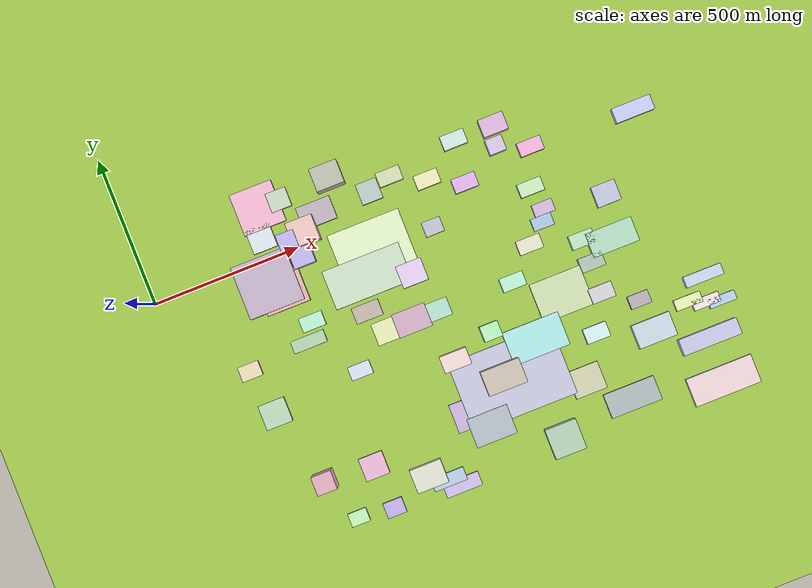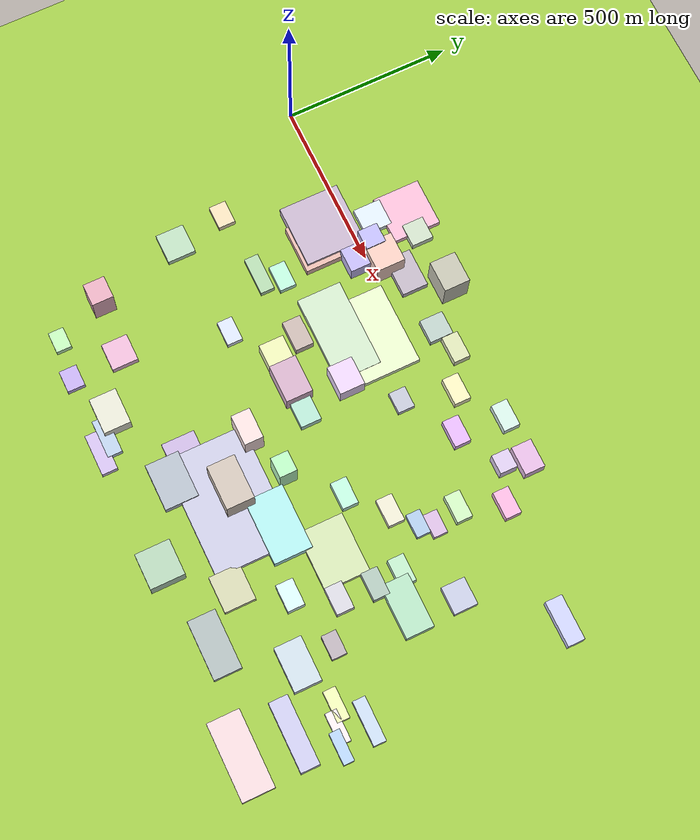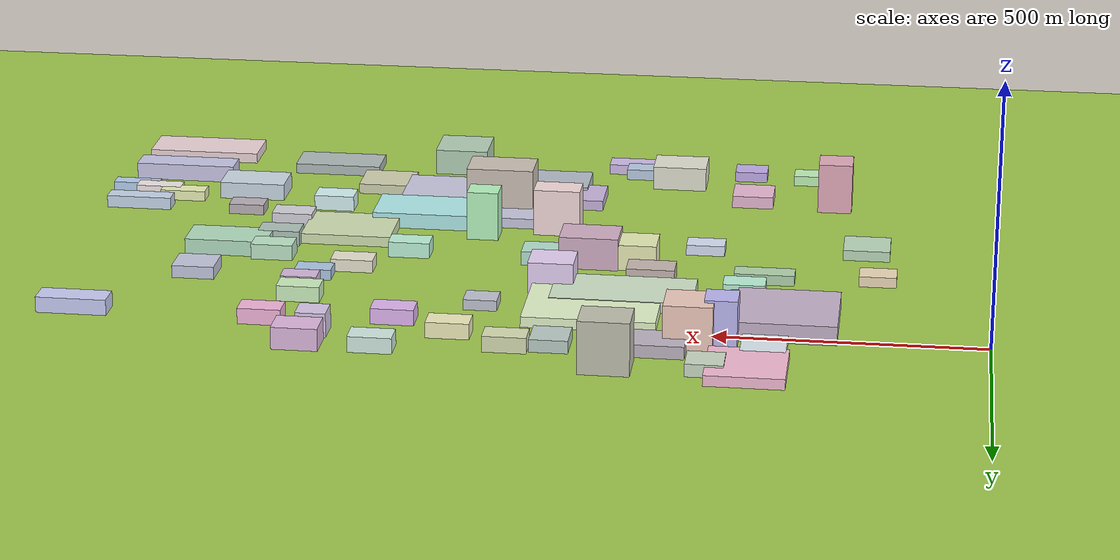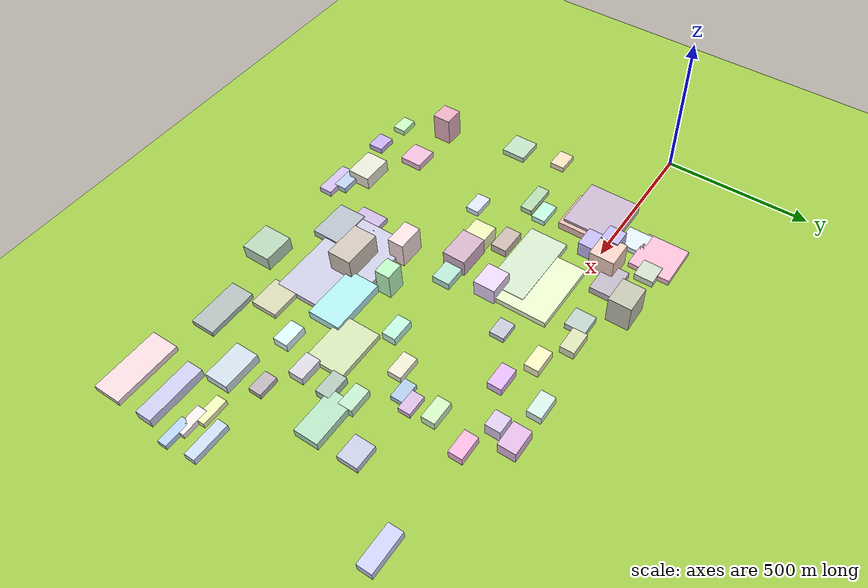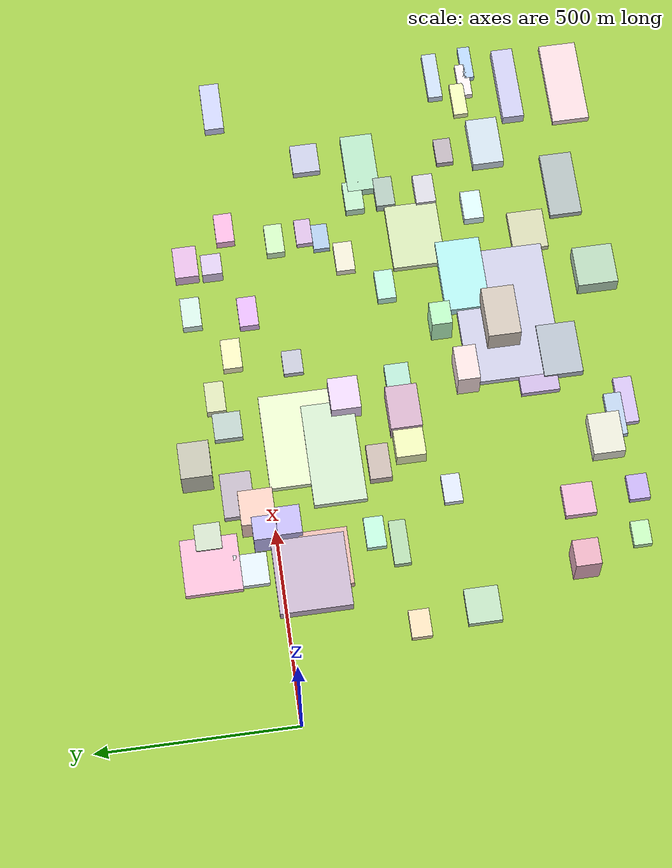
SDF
<sdf version="1.9">
 <world name="city_map">
  <model name="ground_plane">
   <static>1</static>
   <link name="link">
    <collision name="collision">
     <geometry><plane><normal>0 0 1</normal><size>11000 11000</size></plane></geometry>
    </collision>
    <visual name="visual">
     <geometry><plane><normal>0 0 1</normal><size>11000 11000</size></plane></geometry>
     <material>
      <ambient>0.551 0.712 0.210 1</ambient>
      <diffuse>0.651 0.812 0.310 1</diffuse>
      <specular>0.1 0.1 0.05 1</specular>
     </material>
    </visual>
   </link>
  </model>
  <model name="building_735441387">
   <static>1</static>
   <pose>990.6046704130122 -649.9140800671806 10.0 0 0 0</pose>
   <link name="link">
    <collision name="collision">
     <geometry><box><size>358.56232333178815 240.7256999998424 20</size></box></geometry>
    </collision>
    <visual name="visual">
     <cast_shadows>false</cast_shadows>
     <geometry><box><size>358.56232333178815 240.7256999998424 20</size></box></geometry>
     <material>
      <ambient>0.714 0.714 0.808 1</ambient>
      <diffuse>0.814 0.814 0.908 1</diffuse>
      <specular>0.244 0.244 0.272 1</specular>
      <emissive>0.01 0.01 0.01 1</emissive>
     </material>
    </visual>
   </link>
  </model>
  <model name="building_58254114">
   <static>1</static>
   <pose>724.2757790682764 -109.13401245718426 10.0 0 0 0</pose>
   <link name="link">
    <collision name="collision">
     <geometry><box><size>246.58649999971516 217.71884028026636 20</size></box></geometry>
    </collision>
    <visual name="visual">
     <cast_shadows>false</cast_shadows>
     <geometry><box><size>246.58649999971516 217.71884028026636 20</size></box></geometry>
     <material>
      <ambient>0.825 0.893 0.718 1</ambient>
      <diffuse>0.925 0.993 0.818 1</diffuse>
      <specular>0.278 0.298 0.246 1</specular>
      <emissive>0.01 0.01 0.01 1</emissive>
     </material>
    </visual>
   </link>
  </model>
  <model name="building_768414518">
   <static>1</static>
   <pose>675.4798985630688 -168.62658906927803 10.604470796964094 0 0 0</pose>
   <link name="link">
    <collision name="collision">
     <geometry><box><size>265.37880000006453 132.25785919488504 21.208941593928188</size></box></geometry>
    </collision>
    <visual name="visual">
     <cast_shadows>false</cast_shadows>
     <geometry><box><size>265.37880000006453 132.25785919488504 21.208941593928188</size></box></geometry>
     <material>
      <ambient>0.741 0.824 0.715 1</ambient>
      <diffuse>0.841 0.924 0.815 1</diffuse>
      <specular>0.252 0.277 0.245 1</specular>
      <emissive>0.01 0.01 0.01 1</emissive>
     </material>
    </visual>
   </link>
  </model>
  <model name="building_783578311">
   <static>1</static>
   <pose>367.2659103462045 -73.0825729207034 18.0 0 0 0</pose>
   <link name="link">
    <collision name="collision">
     <geometry><box><size>188.20127816013837 179.67570000018185 36.0</size></box></geometry>
    </collision>
    <visual name="visual">
     <cast_shadows>false</cast_shadows>
     <geometry><box><size>188.20127816013837 179.67570000018185 36.0</size></box></geometry>
     <material>
      <ambient>0.697 0.629 0.719 1</ambient>
      <diffuse>0.797 0.729 0.819 1</diffuse>
      <specular>0.239 0.219 0.246 1</specular>
      <emissive>0.01 0.01 0.01 1</emissive>
     </material>
    </visual>
   </link>
  </model>
  <model name="building_491562029">
   <static>1</static>
   <pose>1239.5995822557716 -455.4280711732934 10.0 0 0 0</pose>
   <link name="link">
    <collision name="collision">
     <geometry><box><size>175.53679087195601 133.9437000004935 20</size></box></geometry>
    </collision>
    <visual name="visual">
     <cast_shadows>false</cast_shadows>
     <geometry><box><size>175.53679087195601 133.9437000004935 20</size></box></geometry>
     <material>
      <ambient>0.748 0.810 0.625 1</ambient>
      <diffuse>0.848 0.910 0.725 1</diffuse>
      <specular>0.254 0.273 0.217 1</specular>
      <emissive>0.01 0.01 0.01 1</emissive>
     </material>
    </visual>
   </link>
  </model>
  <model name="building_186137424">
   <static>1</static>
   <pose>1108.603930111163 -557.994513239113 15.0 0 0 0</pose>
   <link name="link">
    <collision name="collision">
     <geometry><box><size>193.07671922219998 113.29769999977657 30.0</size></box></geometry>
    </collision>
    <visual name="visual">
     <cast_shadows>false</cast_shadows>
     <geometry><box><size>193.07671922219998 113.29769999977657 30.0</size></box></geometry>
     <material>
      <ambient>0.615 0.850 0.848 1</ambient>
      <diffuse>0.715 0.950 0.948 1</diffuse>
      <specular>0.215 0.285 0.285 1</specular>
      <emissive>0.01 0.01 0.01 1</emissive>
     </material>
    </visual>
   </link>
  </model>
  <model name="building_936792399">
   <static>1</static>
   <pose>1624.5374056204116 -907.7582186121348 10.0 0 0 0</pose>
   <link name="link">
    <collision name="collision">
     <geometry><box><size>225.4965841618569 95.29349999996128 20</size></box></geometry>
    </collision>
    <visual name="visual">
     <cast_shadows>false</cast_shadows>
     <geometry><box><size>225.4965841618569 95.29349999996128 20</size></box></geometry>
     <material>
      <ambient>0.867 0.768 0.782 1</ambient>
      <diffuse>0.967 0.868 0.882 1</diffuse>
      <specular>0.290 0.260 0.265 1</specular>
      <emissive>0.01 0.01 0.01 1</emissive>
     </material>
    </visual>
   </link>
  </model>
  <model name="building_369859708">
   <static>1</static>
   <pose>425.964973907894 166.7840503494214 10.0 0 0 0</pose>
   <link name="link">
    <collision name="collision">
     <geometry><box><size>143.72280000041115 141.65052970631882 20</size></box></geometry>
    </collision>
    <visual name="visual">
     <cast_shadows>false</cast_shadows>
     <geometry><box><size>143.72280000041115 141.65052970631882 20</size></box></geometry>
     <material>
      <ambient>0.891 0.661 0.758 1</ambient>
      <diffuse>0.991 0.761 0.858 1</diffuse>
      <specular>0.297 0.228 0.257 1</specular>
      <emissive>0.01 0.01 0.01 1</emissive>
     </material>
    </visual>
   </link>
  </model>
  <model name="building_381157944">
   <static>1</static>
   <pose>403.02130046156265 -113.82951725773187 13.5 0 0 0</pose>
   <link name="link">
    <collision name="collision">
     <geometry><box><size>146.7176547548775 118.1817000000649 27.0</size></box></geometry>
    </collision>
    <visual name="visual">
     <cast_shadows>false</cast_shadows>
     <geometry><box><size>146.7176547548775 118.1817000000649 27.0</size></box></geometry>
     <material>
      <ambient>0.820 0.648 0.605 1</ambient>
      <diffuse>0.920 0.748 0.705 1</diffuse>
      <specular>0.276 0.224 0.212 1</specular>
      <emissive>0.01 0.01 0.01 1</emissive>
     </material>
    </visual>
   </link>
  </model>
  <model name="building_538913769">
   <static>1</static>
   <pose>1331.424232459958 -849.419679857849 10.0 0 0 0</pose>
   <link name="link">
    <collision name="collision">
     <geometry><box><size>174.00430363194425 81.90689999968725 20</size></box></geometry>
    </collision>
    <visual name="visual">
     <cast_shadows>false</cast_shadows>
     <geometry><box><size>174.00430363194425 81.90689999968725 20</size></box></geometry>
     <material>
      <ambient>0.612 0.656 0.655 1</ambient>
      <diffuse>0.712 0.756 0.755 1</diffuse>
      <specular>0.214 0.227 0.227 1</specular>
      <emissive>0.01 0.01 0.01 1</emissive>
     </material>
    </visual>
   </link>
  </model>
  <model name="building_262023527">
   <static>1</static>
   <pose>872.5529877613625 -768.860771161569 12.685236863792074 0 0 0</pose>
   <link name="link">
    <collision name="collision">
     <geometry><box><size>138.83880000012283 98.6872113250767 25.370473727584148</size></box></geometry>
    </collision>
    <visual name="visual">
     <cast_shadows>false</cast_shadows>
     <geometry><box><size>138.83880000012283 98.6872113250767 25.370473727584148</size></box></geometry>
     <material>
      <ambient>0.630 0.664 0.708 1</ambient>
      <diffuse>0.730 0.764 0.808 1</diffuse>
      <specular>0.219 0.229 0.242 1</specular>
      <emissive>0.01 0.01 0.01 1</emissive>
     </material>
    </visual>
   </link>
  </model>
  <model name="building_562060062">
   <static>1</static>
   <pose>1458.532356767686 -343.0986178576486 15.0 0 0 0</pose>
   <link name="link">
    <collision name="collision">
     <geometry><box><size>158.6412000004458 82.41360156937621 30.0</size></box></geometry>
    </collision>
    <visual name="visual">
     <cast_shadows>false</cast_shadows>
     <geometry><box><size>158.6412000004458 82.41360156937621 30.0</size></box></geometry>
     <material>
      <ambient>0.627 0.805 0.684 1</ambient>
      <diffuse>0.727 0.905 0.784 1</diffuse>
      <specular>0.218 0.271 0.235 1</specular>
      <emissive>0.01 0.01 0.01 1</emissive>
     </material>
    </visual>
   </link>
  </model>
  <model name="building_133293212">
   <static>1</static>
   <pose>1634.5774587632718 -758.7641567915618 16.5 0 0 0</pose>
   <link name="link">
    <collision name="collision">
     <geometry><box><size>200.58306857929722 55.55550000012488 33.0</size></box></geometry>
    </collision>
    <visual name="visual">
     <cast_shadows>false</cast_shadows>
     <geometry><box><size>200.58306857929722 55.55550000012488 33.0</size></box></geometry>
     <material>
      <ambient>0.717 0.712 0.845 1</ambient>
      <diffuse>0.817 0.812 0.945 1</diffuse>
      <specular>0.245 0.244 0.284 1</specular>
      <emissive>0.01 0.01 0.01 1</emissive>
     </material>
    </visual>
   </link>
  </model>
  <model name="building_648446637">
   <static>1</static>
   <pose>964.6554053573074 -631.3977401350257 49.181187085263616 0 0 0</pose>
   <link name="link">
    <collision name="collision">
     <geometry><box><size>131.5956034640008 82.35090000014367 98.36237417052723</size></box></geometry>
    </collision>
    <visual name="visual">
     <cast_shadows>false</cast_shadows>
     <geometry><box><size>131.5956034640008 82.35090000014367 98.36237417052723</size></box></geometry>
     <material>
      <ambient>0.730 0.684 0.637 1</ambient>
      <diffuse>0.830 0.784 0.737 1</diffuse>
      <specular>0.249 0.235 0.221 1</specular>
      <emissive>0.01 0.01 0.01 1</emissive>
     </material>
    </visual>
   </link>
  </model>
  <model name="building_60316462">
   <static>1</static>
   <pose>1077.996618640191 -893.0307165947186 25.449811772435737 0 0 0</pose>
   <link name="link">
    <collision name="collision">
     <geometry><box><size>106.13820000050112 101.67591008909793 50.899623544871474</size></box></geometry>
    </collision>
    <visual name="visual">
     <cast_shadows>false</cast_shadows>
     <geometry><box><size>106.13820000050112 101.67591008909793 50.899623544871474</size></box></geometry>
     <material>
      <ambient>0.630 0.748 0.642 1</ambient>
      <diffuse>0.730 0.848 0.742 1</diffuse>
      <specular>0.219 0.254 0.223 1</specular>
      <emissive>0.01 0.01 0.01 1</emissive>
     </material>
    </visual>
   </link>
  </model>
  <model name="building_56574869">
   <static>1</static>
   <pose>1474.6492242761747 -672.9533134318946 16.5 0 0 0</pose>
   <link name="link">
    <collision name="collision">
     <geometry><box><size>130.3139999998777 80.19666165283871 33.0</size></box></geometry>
    </collision>
    <visual name="visual">
     <cast_shadows>false</cast_shadows>
     <geometry><box><size>130.3139999998777 80.19666165283871 33.0</size></box></geometry>
     <material>
      <ambient>0.725 0.783 0.826 1</ambient>
      <diffuse>0.825 0.883 0.926 1</diffuse>
      <specular>0.248 0.265 0.278 1</specular>
      <emissive>0.01 0.01 0.01 1</emissive>
     </material>
    </visual>
   </link>
  </model>
  <model name="building_377217914">
   <static>1</static>
   <pose>816.330031076172 -704.4735054795447 10.0 0 0 0</pose>
   <link name="link">
    <collision name="collision">
     <geometry><box><size>101.32079999941368 97.1188418491505 20</size></box></geometry>
    </collision>
    <visual name="visual">
     <cast_shadows>false</cast_shadows>
     <geometry><box><size>101.32079999941368 97.1188418491505 20</size></box></geometry>
     <material>
      <ambient>0.715 0.636 0.800 1</ambient>
      <diffuse>0.815 0.736 0.900 1</diffuse>
      <specular>0.244 0.221 0.270 1</specular>
      <emissive>0.01 0.01 0.01 1</emissive>
     </material>
    </visual>
   </link>
  </model>
  <model name="building_551298614">
   <static>1</static>
   <pose>1213.2881789152273 -743.7047190032129 10.0 0 0 0</pose>
   <link name="link">
    <collision name="collision">
     <geometry><box><size>106.59020681490416 91.56390000054415 20</size></box></geometry>
    </collision>
    <visual name="visual">
     <cast_shadows>false</cast_shadows>
     <geometry><box><size>106.59020681490416 91.56390000054415 20</size></box></geometry>
     <material>
      <ambient>0.749 0.754 0.616 1</ambient>
      <diffuse>0.849 0.854 0.716 1</diffuse>
      <specular>0.255 0.256 0.215 1</specular>
      <emissive>0.01 0.01 0.01 1</emissive>
     </material>
    </visual>
   </link>
  </model>
  <model name="building_434321345">
   <static>1</static>
   <pose>757.5331459812622 -355.17415279671314 31.3349331299877 0 0 0</pose>
   <link name="link">
    <collision name="collision">
     <geometry><box><size>113.05350000007763 79.44850373898161 62.6698662599754</size></box></geometry>
    </collision>
    <visual name="visual">
     <cast_shadows>false</cast_shadows>
     <geometry><box><size>113.05350000007763 79.44850373898161 62.6698662599754</size></box></geometry>
     <material>
      <ambient>0.749 0.611 0.705 1</ambient>
      <diffuse>0.849 0.711 0.805 1</diffuse>
      <specular>0.255 0.213 0.242 1</specular>
      <emissive>0.01 0.01 0.01 1</emissive>
     </material>
    </visual>
   </link>
  </model>
  <model name="building_584629964">
   <static>1</static>
   <pose>597.0503593994537 81.70276166050718 12.0 0 0 0</pose>
   <link name="link">
    <collision name="collision">
     <geometry><box><size>116.20377138317615 77.08950000017722 24.0</size></box></geometry>
    </collision>
    <visual name="visual">
     <cast_shadows>false</cast_shadows>
     <geometry><box><size>116.20377138317615 77.08950000017722 24.0</size></box></geometry>
     <material>
      <ambient>0.672 0.633 0.687 1</ambient>
      <diffuse>0.772 0.733 0.787 1</diffuse>
      <specular>0.232 0.220 0.236 1</specular>
      <emissive>0.01 0.01 0.01 1</emissive>
     </material>
    </visual>
   </link>
  </model>
  <model name="building_729115813">
   <static>1</static>
   <pose>624.3681095076331 -843.0959953097009 23.579883490591683 0 0 0</pose>
   <link name="link">
    <collision name="collision">
     <geometry><box><size>106.8499377869804 79.40940000047192 47.15976698118337</size></box></geometry>
    </collision>
    <visual name="visual">
     <cast_shadows>false</cast_shadows>
     <geometry><box><size>106.8499377869804 79.40940000047192 47.15976698118337</size></box></geometry>
     <material>
      <ambient>0.816 0.817 0.752 1</ambient>
      <diffuse>0.916 0.917 0.852 1</diffuse>
      <specular>0.275 0.275 0.255 1</specular>
      <emissive>0.01 0.01 0.01 1</emissive>
     </material>
    </visual>
   </link>
  </model>
  <model name="building_755749961">
   <static>1</static>
   <pose>537.044354211928 38.89663942627512 42.837409564014244 0 0 0</pose>
   <link name="link">
    <collision name="collision">
     <geometry><box><size>89.87670000054493 85.26402728685214 85.67481912802849</size></box></geometry>
    </collision>
    <visual name="visual">
     <cast_shadows>false</cast_shadows>
     <geometry><box><size>89.87670000054493 85.26402728685214 85.67481912802849</size></box></geometry>
     <material>
      <ambient>0.873 0.724 0.674 1</ambient>
      <diffuse>0.973 0.824 0.774 1</diffuse>
      <specular>0.292 0.247 0.232 1</specular>
      <emissive>0.01 0.01 0.01 1</emissive>
     </material>
    </visual>
   </link>
  </model>
  <model name="building_628136467">
   <static>1</static>
   <pose>234.58718669351947 -473.778576584772 10.0 0 0 0</pose>
   <link name="link">
    <collision name="collision">
     <geometry><box><size>89.38830000035836 83.59787084529131 20</size></box></geometry>
    </collision>
    <visual name="visual">
     <cast_shadows>false</cast_shadows>
     <geometry><box><size>89.38830000035836 83.59787084529131 20</size></box></geometry>
     <material>
      <ambient>0.662 0.786 0.668 1</ambient>
      <diffuse>0.762 0.886 0.768 1</diffuse>
      <specular>0.229 0.266 0.230 1</specular>
      <emissive>0.01 0.01 0.01 1</emissive>
     </material>
    </visual>
   </link>
  </model>
  <model name="building_958947282">
   <static>1</static>
   <pose>673.7667631927353 174.85680202018443 50.0 0 0 0</pose>
   <link name="link">
    <collision name="collision">
     <geometry><box><size>93.32880000066268 77.42045511719742 100</size></box></geometry>
    </collision>
    <visual name="visual">
     <cast_shadows>false</cast_shadows>
     <geometry><box><size>93.32880000066268 77.42045511719742 100</size></box></geometry>
     <material>
      <ambient>0.681 0.678 0.611 1</ambient>
      <diffuse>0.781 0.778 0.711 1</diffuse>
      <specular>0.234 0.233 0.213 1</specular>
      <emissive>0.01 0.01 0.01 1</emissive>
     </material>
    </visual>
   </link>
  </model>
  <model name="building_808048924">
   <static>1</static>
   <pose>673.9875274545304 -356.53775373892506 25.193564338791006 0 0 0</pose>
   <link name="link">
    <collision name="collision">
     <geometry><box><size>90.90899999998925 74.13260201561191 50.38712867758201</size></box></geometry>
    </collision>
    <visual name="visual">
     <cast_shadows>false</cast_shadows>
     <geometry><box><size>90.90899999998925 74.13260201561191 50.38712867758201</size></box></geometry>
     <material>
      <ambient>0.842 0.863 0.639 1</ambient>
      <diffuse>0.942 0.963 0.739 1</diffuse>
      <specular>0.283 0.289 0.222 1</specular>
      <emissive>0.01 0.01 0.01 1</emissive>
     </material>
    </visual>
   </link>
  </model>
  <model name="building_574080172">
   <static>1</static>
   <pose>401.05636709392616 70.6365771503854 10.0 0 0 0</pose>
   <link name="link">
    <collision name="collision">
     <geometry><box><size>81.83908151845749 81.76259999957836 20</size></box></geometry>
    </collision>
    <visual name="visual">
     <cast_shadows>false</cast_shadows>
     <geometry><box><size>81.83908151845749 81.76259999957836 20</size></box></geometry>
     <material>
      <ambient>0.795 0.845 0.877 1</ambient>
      <diffuse>0.895 0.945 0.977 1</diffuse>
      <specular>0.269 0.283 0.293 1</specular>
      <emissive>0.01 0.01 0.01 1</emissive>
     </material>
    </visual>
   </link>
  </model>
  <model name="building_566540135">
   <static>1</static>
   <pose>1673.53289254819 18.072882076226907 15.0 0 0 0</pose>
   <link name="link">
    <collision name="collision">
     <geometry><box><size>132.4341000002036 50.18334468696541 30.0</size></box></geometry>
    </collision>
    <visual name="visual">
     <cast_shadows>false</cast_shadows>
     <geometry><box><size>132.4341000002036 50.18334468696541 30.0</size></box></geometry>
     <material>
      <ambient>0.719 0.738 0.899 1</ambient>
      <diffuse>0.819 0.838 0.999 1</diffuse>
      <specular>0.246 0.251 0.300 1</specular>
      <emissive>0.01 0.01 0.01 1</emissive>
     </material>
    </visual>
   </link>
  </model>
  <model name="building_635563562">
   <static>1</static>
   <pose>813.5965050542937 -213.7750263494422 30.0 0 0 0</pose>
   <link name="link">
    <collision name="collision">
     <geometry><box><size>85.96427340409605 75.29129999966955 60.0</size></box></geometry>
    </collision>
    <visual name="visual">
     <cast_shadows>false</cast_shadows>
     <geometry><box><size>85.96427340409605 75.29129999966955 60.0</size></box></geometry>
     <material>
      <ambient>0.837 0.751 0.898 1</ambient>
      <diffuse>0.937 0.851 0.998 1</diffuse>
      <specular>0.281 0.255 0.299 1</specular>
      <emissive>0.01 0.01 0.01 1</emissive>
     </material>
    </visual>
   </link>
  </model>
  <model name="building_563593408">
   <static>1</static>
   <pose>469.8171469067023 -749.3234391206935 11.907342184313453 0 0 0</pose>
   <link name="link">
    <collision name="collision">
     <geometry><box><size>81.14366635684364 77.13389999990738 23.814684368626907</size></box></geometry>
    </collision>
    <visual name="visual">
     <cast_shadows>false</cast_shadows>
     <geometry><box><size>81.14366635684364 77.13389999990738 23.814684368626907</size></box></geometry>
     <material>
      <ambient>0.844 0.652 0.763 1</ambient>
      <diffuse>0.944 0.752 0.863 1</diffuse>
      <specular>0.283 0.226 0.259 1</specular>
      <emissive>0.01 0.01 0.01 1</emissive>
     </material>
    </visual>
   </link>
  </model>
  <model name="building_521005968">
   <static>1</static>
   <pose>714.5410253715482 -910.9911233177605 10.0 0 0 0</pose>
   <link name="link">
    <collision name="collision">
     <geometry><box><size>122.1111000002395 46.457081179617 20</size></box></geometry>
    </collision>
    <visual name="visual">
     <cast_shadows>false</cast_shadows>
     <geometry><box><size>122.1111000002395 46.457081179617 20</size></box></geometry>
     <material>
      <ambient>0.739 0.668 0.845 1</ambient>
      <diffuse>0.839 0.768 0.945 1</diffuse>
      <specular>0.252 0.230 0.283 1</specular>
      <emissive>0.01 0.01 0.01 1</emissive>
     </material>
    </visual>
   </link>
  </model>
  <model name="building_964939067">
   <static>1</static>
   <pose>1492.8097891769867 -203.95554460083804 12.0 0 0 0</pose>
   <link name="link">
    <collision name="collision">
     <geometry><box><size>80.66852025577967 69.81900000039332 24.0</size></box></geometry>
    </collision>
    <visual name="visual">
     <cast_shadows>false</cast_shadows>
     <geometry><box><size>80.66852025577967 69.81900000039332 24.0</size></box></geometry>
     <material>
      <ambient>0.698 0.714 0.804 1</ambient>
      <diffuse>0.798 0.814 0.904 1</diffuse>
      <specular>0.239 0.244 0.271 1</specular>
      <emissive>0.01 0.01 0.01 1</emissive>
     </material>
    </visual>
   </link>
  </model>
  <model name="building_356332856">
   <static>1</static>
   <pose>1232.6774836804107 136.47664994558056 21.0 0 0 0</pose>
   <link name="link">
    <collision name="collision">
     <geometry><box><size>84.70854920355545 60.17310000045484 42.0</size></box></geometry>
    </collision>
    <visual name="visual">
     <cast_shadows>false</cast_shadows>
     <geometry><box><size>84.70854920355545 60.17310000045484 42.0</size></box></geometry>
     <material>
      <ambient>0.807 0.648 0.805 1</ambient>
      <diffuse>0.907 0.748 0.905 1</diffuse>
      <specular>0.272 0.224 0.271 1</specular>
      <emissive>0.01 0.01 0.01 1</emissive>
     </material>
    </visual>
   </link>
  </model>
  <model name="building_686606876">
   <static>1</static>
   <pose>840.0375067448318 -525.2366490001966 45.84929412218402 0 0 0</pose>
   <link name="link">
    <collision name="collision">
     <geometry><box><size>90.89790000064824 56.052268073569934 91.69858824436804</size></box></geometry>
    </collision>
    <visual name="visual">
     <cast_shadows>false</cast_shadows>
     <geometry><box><size>90.89790000064824 56.052268073569934 91.69858824436804</size></box></geometry>
     <material>
      <ambient>0.892 0.793 0.790 1</ambient>
      <diffuse>0.992 0.893 0.890 1</diffuse>
      <specular>0.298 0.268 0.267 1</specular>
      <emissive>0.01 0.01 0.01 1</emissive>
     </material>
    </visual>
   </link>
  </model>
  <model name="building_296955435">
   <static>1</static>
   <pose>503.70224528989615 -29.916377264074157 27.0 0 0 0</pose>
   <link name="link">
    <collision name="collision">
     <geometry><box><size>72.93196978188155 68.96429999986964 54.0</size></box></geometry>
    </collision>
    <visual name="visual">
     <cast_shadows>false</cast_shadows>
     <geometry><box><size>72.93196978188155 68.96429999986964 54.0</size></box></geometry>
     <material>
      <ambient>0.678 0.643 0.864 1</ambient>
      <diffuse>0.778 0.743 0.964 1</diffuse>
      <specular>0.234 0.223 0.289 1</specular>
      <emissive>0.01 0.01 0.01 1</emissive>
     </material>
    </visual>
   </link>
  </model>
  <model name="building_615660295">
   <static>1</static>
   <pose>633.5227892668971 -275.73631431479885 15.007976786511374 0 0 0</pose>
   <link name="link">
    <collision name="collision">
     <geometry><box><size>91.25310000006692 54.603868029423474 30.01595357302275</size></box></geometry>
    </collision>
    <visual name="visual">
     <cast_shadows>false</cast_shadows>
     <geometry><box><size>91.25310000006692 54.603868029423474 30.01595357302275</size></box></geometry>
     <material>
      <ambient>0.703 0.640 0.609 1</ambient>
      <diffuse>0.803 0.740 0.709 1</diffuse>
      <specular>0.241 0.222 0.213 1</specular>
      <emissive>0.01 0.01 0.01 1</emissive>
     </material>
    </visual>
   </link>
  </model>
  <model name="building_848802077">
   <static>1</static>
   <pose>781.6605497973637 84.1043676737041 12.0 0 0 0</pose>
   <link name="link">
    <collision name="collision">
     <geometry><box><size>70.47875129766884 70.2407999998016 24.0</size></box></geometry>
    </collision>
    <visual name="visual">
     <cast_shadows>false</cast_shadows>
     <geometry><box><size>70.47875129766884 70.2407999998016 24.0</size></box></geometry>
     <material>
      <ambient>0.656 0.728 0.702 1</ambient>
      <diffuse>0.756 0.828 0.802 1</diffuse>
      <specular>0.227 0.248 0.241 1</specular>
      <emissive>0.01 0.01 0.01 1</emissive>
     </material>
    </visual>
   </link>
  </model>
  <model name="building_117550449">
   <static>1</static>
   <pose>680.1774436802332 -878.5035486997004 10.5 0 0 0</pose>
   <link name="link">
    <collision name="collision">
     <geometry><box><size>112.39859999952273 43.133339879650656 21.0</size></box></geometry>
    </collision>
    <visual name="visual">
     <cast_shadows>false</cast_shadows>
     <geometry><box><size>112.39859999952273 43.133339879650656 21.0</size></box></geometry>
     <material>
      <ambient>0.654 0.730 0.830 1</ambient>
      <diffuse>0.754 0.830 0.930 1</diffuse>
      <specular>0.226 0.249 0.279 1</specular>
      <emissive>0.01 0.01 0.01 1</emissive>
     </material>
    </visual>
   </link>
  </model>
  <model name="building_432262811">
   <static>1</static>
   <pose>1688.3755831664835 -566.9829309615393 12.0 0 0 0</pose>
   <link name="link">
    <collision name="collision">
     <geometry><box><size>129.08721337837807 37.14059999945363 24.0</size></box></geometry>
    </collision>
    <visual name="visual">
     <cast_shadows>false</cast_shadows>
     <geometry><box><size>129.08721337837807 37.14059999945363 24.0</size></box></geometry>
     <material>
      <ambient>0.710 0.774 0.858 1</ambient>
      <diffuse>0.810 0.874 0.958 1</diffuse>
      <specular>0.243 0.262 0.287 1</specular>
      <emissive>0.01 0.01 0.01 1</emissive>
     </material>
    </visual>
   </link>
  </model>
  <model name="building_714309108">
   <static>1</static>
   <pose>421.3567924342178 -296.870008624932 10.0 0 0 0</pose>
   <link name="link">
    <collision name="collision">
     <geometry><box><size>113.68660021231625 41.39190000023518 20</size></box></geometry>
    </collision>
    <visual name="visual">
     <cast_shadows>false</cast_shadows>
     <geometry><box><size>113.68660021231625 41.39190000023518 20</size></box></geometry>
     <material>
      <ambient>0.623 0.765 0.608 1</ambient>
      <diffuse>0.723 0.865 0.708 1</diffuse>
      <specular>0.217 0.260 0.212 1</specular>
      <emissive>0.01 0.01 0.01 1</emissive>
     </material>
    </visual>
   </link>
  </model>
  <model name="building_162003245">
   <static>1</static>
   <pose>849.3147991971149 -354.3147042799425 13.5 0 0 0</pose>
   <link name="link">
    <collision name="collision">
     <geometry><box><size>76.98959999979849 60.832552949665995 27.0</size></box></geometry>
    </collision>
    <visual name="visual">
     <cast_shadows>false</cast_shadows>
     <geometry><box><size>76.98959999979849 60.832552949665995 27.0</size></box></geometry>
     <material>
      <ambient>0.632 0.815 0.743 1</ambient>
      <diffuse>0.732 0.915 0.843 1</diffuse>
      <specular>0.220 0.275 0.253 1</specular>
      <emissive>0.01 0.01 0.01 1</emissive>
     </material>
    </visual>
   </link>
  </model>
  <model name="building_772717374">
   <static>1</static>
   <pose>498.28997834766017 166.52830201594028 12.0 0 0 0</pose>
   <link name="link">
    <collision name="collision">
     <geometry><box><size>68.62020000058067 64.5204417020281 24.0</size></box></geometry>
    </collision>
    <visual name="visual">
     <cast_shadows>false</cast_shadows>
     <geometry><box><size>68.62020000058067 64.5204417020281 24.0</size></box></geometry>
     <material>
      <ambient>0.729 0.785 0.700 1</ambient>
      <diffuse>0.829 0.885 0.800 1</diffuse>
      <specular>0.249 0.265 0.240 1</specular>
      <emissive>0.01 0.01 0.01 1</emissive>
     </material>
    </visual>
   </link>
  </model>
  <model name="building_1190801">
   <static>1</static>
   <pose>306.35529267752236 -735.2807291643595 49.82084460213994 0 0 0</pose>
   <link name="link">
    <collision name="collision">
     <geometry><box><size>66.8494166856968 63.50309999993442 99.64168920427988</size></box></geometry>
    </collision>
    <visual name="visual">
     <cast_shadows>false</cast_shadows>
     <geometry><box><size>66.8494166856968 63.50309999993442 99.64168920427988</size></box></geometry>
     <material>
      <ambient>0.819 0.601 0.668 1</ambient>
      <diffuse>0.919 0.701 0.768 1</diffuse>
      <specular>0.276 0.210 0.230 1</specular>
      <emissive>0.01 0.01 0.01 1</emissive>
     </material>
    </visual>
   </link>
  </model>
  <model name="building_455834283">
   <static>1</static>
   <pose>1361.5125210178435 -497.4543318280991 15.0 0 0 0</pose>
   <link name="link">
    <collision name="collision">
     <geometry><box><size>79.77570000002032 50.93164423969165 30.0</size></box></geometry>
    </collision>
    <visual name="visual">
     <cast_shadows>false</cast_shadows>
     <geometry><box><size>79.77570000002032 50.93164423969165 30.0</size></box></geometry>
     <material>
      <ambient>0.763 0.758 0.793 1</ambient>
      <diffuse>0.863 0.858 0.893 1</diffuse>
      <specular>0.259 0.257 0.268 1</specular>
      <emissive>0.01 0.01 0.01 1</emissive>
     </material>
    </visual>
   </link>
  </model>
  <model name="building_538227803">
   <static>1</static>
   <pose>1298.2073176145284 -612.0576477251844 15.0 0 0 0</pose>
   <link name="link">
    <collision name="collision">
     <geometry><box><size>79.09859999999469 50.50053091738582 30.0</size></box></geometry>
    </collision>
    <visual name="visual">
     <cast_shadows>false</cast_shadows>
     <geometry><box><size>79.09859999999469 50.50053091738582 30.0</size></box></geometry>
     <material>
      <ambient>0.769 0.885 0.896 1</ambient>
      <diffuse>0.869 0.985 0.996 1</diffuse>
      <specular>0.261 0.295 0.299 1</specular>
      <emissive>0.01 0.01 0.01 1</emissive>
     </material>
    </visual>
   </link>
  </model>
  <model name="building_598105090">
   <static>1</static>
   <pose>1097.1848576195005 138.62893894444397 15.0 0 0 0</pose>
   <link name="link">
    <collision name="collision">
     <geometry><box><size>80.75065551819955 48.57359999977007 30.0</size></box></geometry>
    </collision>
    <visual name="visual">
     <cast_shadows>false</cast_shadows>
     <geometry><box><size>80.75065551819955 48.57359999977007 30.0</size></box></geometry>
     <material>
      <ambient>0.753 0.855 0.817 1</ambient>
      <diffuse>0.853 0.955 0.917 1</diffuse>
      <specular>0.256 0.287 0.275 1</specular>
      <emissive>0.01 0.01 0.01 1</emissive>
     </material>
    </visual>
   </link>
  </model>
  <model name="building_526933900">
   <static>1</static>
   <pose>1367.6380282431787 -393.2639866230697 15.0 0 0 0</pose>
   <link name="link">
    <collision name="collision">
     <geometry><box><size>80.96893219692647 48.32940000007113 30.0</size></box></geometry>
    </collision>
    <visual name="visual">
     <cast_shadows>false</cast_shadows>
     <geometry><box><size>80.96893219692647 48.32940000007113 30.0</size></box></geometry>
     <material>
      <ambient>0.609 0.696 0.652 1</ambient>
      <diffuse>0.709 0.796 0.752 1</diffuse>
      <specular>0.213 0.239 0.225 1</specular>
      <emissive>0.01 0.01 0.01 1</emissive>
     </material>
    </visual>
   </link>
  </model>
  <model name="building_41992627">
   <static>1</static>
   <pose>970.4049342370727 51.07034721059574 15.0 0 0 0</pose>
   <link name="link">
    <collision name="collision">
     <geometry><box><size>80.31308261162664 48.57359999977007 30.0</size></box></geometry>
    </collision>
    <visual name="visual">
     <cast_shadows>false</cast_shadows>
     <geometry><box><size>80.31308261162664 48.57359999977007 30.0</size></box></geometry>
     <material>
      <ambient>0.877 0.862 0.669 1</ambient>
      <diffuse>0.977 0.962 0.769 1</diffuse>
      <specular>0.293 0.288 0.231 1</specular>
      <emissive>0.01 0.01 0.01 1</emissive>
     </material>
    </visual>
   </link>
  </model>
  <model name="building_610690502">
   <static>1</static>
   <pose>860.0696416255221 105.40908396129795 15.0 0 0 0</pose>
   <link name="link">
    <collision name="collision">
     <geometry><box><size>80.31218920720204 48.57359999977007 30.0</size></box></geometry>
    </collision>
    <visual name="visual">
     <cast_shadows>false</cast_shadows>
     <geometry><box><size>80.31218920720204 48.57359999977007 30.0</size></box></geometry>
     <material>
      <ambient>0.776 0.801 0.631 1</ambient>
      <diffuse>0.876 0.901 0.731 1</diffuse>
      <specular>0.263 0.270 0.219 1</specular>
      <emissive>0.01 0.01 0.01 1</emissive>
     </material>
    </visual>
   </link>
  </model>
  <model name="building_400557973">
   <static>1</static>
   <pose>1080.1589488446782 -3.892563731786997 15.0 0 0 0</pose>
   <link name="link">
    <collision name="collision">
     <geometry><box><size>80.31398615619922 48.56249999964035 30.0</size></box></geometry>
    </collision>
    <visual name="visual">
     <cast_shadows>false</cast_shadows>
     <geometry><box><size>80.31398615619922 48.56249999964035 30.0</size></box></geometry>
     <material>
      <ambient>0.810 0.639 0.880 1</ambient>
      <diffuse>0.910 0.739 0.980 1</diffuse>
      <specular>0.273 0.222 0.294 1</specular>
      <emissive>0.01 0.01 0.01 1</emissive>
     </material>
    </visual>
   </link>
  </model>
  <model name="building_987600725">
   <static>1</static>
   <pose>1365.5461975185317 -313.1902404512614 15.0 0 0 0</pose>
   <link name="link">
    <collision name="collision">
     <geometry><box><size>80.43060000057523 48.43052154257299 30.0</size></box></geometry>
    </collision>
    <visual name="visual">
     <cast_shadows>false</cast_shadows>
     <geometry><box><size>80.43060000057523 48.43052154257299 30.0</size></box></geometry>
     <material>
      <ambient>0.671 0.835 0.707 1</ambient>
      <diffuse>0.771 0.935 0.807 1</diffuse>
      <specular>0.231 0.281 0.242 1</specular>
      <emissive>0.01 0.01 0.01 1</emissive>
     </material>
    </visual>
   </link>
  </model>
  <model name="building_56168968">
   <static>1</static>
   <pose>1201.6884790737802 -266.76053587056856 12.0 0 0 0</pose>
   <link name="link">
    <collision name="collision">
     <geometry><box><size>80.71920000000432 47.77488747288217 24.0</size></box></geometry>
    </collision>
    <visual name="visual">
     <cast_shadows>false</cast_shadows>
     <geometry><box><size>80.71920000000432 47.77488747288217 24.0</size></box></geometry>
     <material>
      <ambient>0.844 0.829 0.747 1</ambient>
      <diffuse>0.944 0.929 0.847 1</diffuse>
      <specular>0.283 0.279 0.254 1</specular>
      <emissive>0.01 0.01 0.01 1</emissive>
     </material>
    </visual>
   </link>
  </model>
  <model name="building_278205874">
   <static>1</static>
   <pose>455.35126691238776 -240.52916720667625 10.0 0 0 0</pose>
   <link name="link">
    <collision name="collision">
     <geometry><box><size>79.04310000013481 48.686551797305555 20</size></box></geometry>
    </collision>
    <visual name="visual">
     <cast_shadows>false</cast_shadows>
     <geometry><box><size>79.04310000013481 48.686551797305555 20</size></box></geometry>
     <material>
      <ambient>0.662 0.884 0.775 1</ambient>
      <diffuse>0.762 0.984 0.875 1</diffuse>
      <specular>0.229 0.295 0.263 1</specular>
      <emissive>0.01 0.01 0.01 1</emissive>
     </material>
    </visual>
   </link>
  </model>
  <model name="building_805416335">
   <static>1</static>
   <pose>1106.6194216194385 -359.0135770574726 15.0 0 0 0</pose>
   <link name="link">
    <collision name="collision">
     <geometry><box><size>79.79297017014248 47.2193999997188 30.0</size></box></geometry>
    </collision>
    <visual name="visual">
     <cast_shadows>false</cast_shadows>
     <geometry><box><size>79.79297017014248 47.2193999997188 30.0</size></box></geometry>
     <material>
      <ambient>0.669 0.887 0.783 1</ambient>
      <diffuse>0.769 0.987 0.883 1</diffuse>
      <specular>0.231 0.296 0.265 1</specular>
      <emissive>0.01 0.01 0.01 1</emissive>
     </material>
    </visual>
   </link>
  </model>
  <model name="building_251600017">
   <static>1</static>
   <pose>1320.2990344867028 27.938837267795552 15.0 0 0 0</pose>
   <link name="link">
    <collision name="collision">
     <geometry><box><size>80.5296424976058 46.60889999968276 30.0</size></box></geometry>
    </collision>
    <visual name="visual">
     <cast_shadows>false</cast_shadows>
     <geometry><box><size>80.5296424976058 46.60889999968276 30.0</size></box></geometry>
     <material>
      <ambient>0.890 0.637 0.791 1</ambient>
      <diffuse>0.990 0.737 0.891 1</diffuse>
      <specular>0.297 0.221 0.267 1</specular>
      <emissive>0.01 0.01 0.01 1</emissive>
     </material>
    </visual>
   </link>
  </model>
  <model name="building_496262473">
   <static>1</static>
   <pose>1272.5440792862237 -96.0621987103495 15.0 0 0 0</pose>
   <link name="link">
    <collision name="collision">
     <geometry><box><size>81.07878233678186 46.087199999895745 30.0</size></box></geometry>
    </collision>
    <visual name="visual">
     <cast_shadows>false</cast_shadows>
     <geometry><box><size>81.07878233678186 46.087199999895745 30.0</size></box></geometry>
     <material>
      <ambient>0.731 0.871 0.672 1</ambient>
      <diffuse>0.831 0.971 0.772 1</diffuse>
      <specular>0.249 0.291 0.232 1</specular>
      <emissive>0.01 0.01 0.01 1</emissive>
     </material>
    </visual>
   </link>
  </model>
  <model name="building_964314447">
   <static>1</static>
   <pose>209.33134180359173 -316.4804341799685 10.0 0 0 0</pose>
   <link name="link">
    <collision name="collision">
     <geometry><box><size>70.08539999956298 50.85553893179735 20</size></box></geometry>
    </collision>
    <visual name="visual">
     <cast_shadows>false</cast_shadows>
     <geometry><box><size>70.08539999956298 50.85553893179735 20</size></box></geometry>
     <material>
      <ambient>0.871 0.794 0.654 1</ambient>
      <diffuse>0.971 0.894 0.754 1</diffuse>
      <specular>0.291 0.268 0.226 1</specular>
      <emissive>0.01 0.01 0.01 1</emissive>
     </material>
    </visual>
   </link>
  </model>
  <model name="building_701751203">
   <static>1</static>
   <pose>479.96308672591096 27.00621509276075 45.0 0 0 0</pose>
   <link name="link">
    <collision name="collision">
     <geometry><box><size>59.888999953447936 59.08530000036194 90.0</size></box></geometry>
    </collision>
    <visual name="visual">
     <cast_shadows>false</cast_shadows>
     <geometry><box><size>59.888999953447936 59.08530000036194 90.0</size></box></geometry>
     <material>
      <ambient>0.669 0.650 0.891 1</ambient>
      <diffuse>0.769 0.750 0.991 1</diffuse>
      <specular>0.231 0.225 0.297 1</specular>
      <emissive>0.01 0.01 0.01 1</emissive>
     </material>
    </visual>
   </link>
  </model>
  <model name="building_603074960">
   <static>1</static>
   <pose>542.5790002153637 -444.5491624315457 10.0 0 0 0</pose>
   <link name="link">
    <collision name="collision">
     <geometry><box><size>73.8095144951849 45.86519999966754 20</size></box></geometry>
    </collision>
    <visual name="visual">
     <cast_shadows>false</cast_shadows>
     <geometry><box><size>73.8095144951849 45.86519999966754 20</size></box></geometry>
     <material>
      <ambient>0.778 0.812 0.894 1</ambient>
      <diffuse>0.878 0.912 0.994 1</diffuse>
      <specular>0.263 0.274 0.298 1</specular>
      <emissive>0.01 0.01 0.01 1</emissive>
     </material>
    </visual>
   </link>
  </model>
  <model name="building_273198336">
   <static>1</static>
   <pose>482.78716739763104 -899.8259995514601 10.0 0 0 0</pose>
   <link name="link">
    <collision name="collision">
     <geometry><box><size>64.6629102761878 51.737100000458724 20</size></box></geometry>
    </collision>
    <visual name="visual">
     <cast_shadows>false</cast_shadows>
     <geometry><box><size>64.6629102761878 51.737100000458724 20</size></box></geometry>
     <material>
      <ambient>0.688 0.606 0.852 1</ambient>
      <diffuse>0.788 0.706 0.952 1</diffuse>
      <specular>0.236 0.212 0.286 1</specular>
      <emissive>0.01 0.01 0.01 1</emissive>
     </material>
    </visual>
   </link>
  </model>
  <model name="building_851981631">
   <static>1</static>
   <pose>1612.4306482442075 -626.2193945673775 10.0 0 0 0</pose>
   <link name="link">
    <collision name="collision">
     <geometry><box><size>90.43169999993239 36.68664333385171 20</size></box></geometry>
    </collision>
    <visual name="visual">
     <cast_shadows>false</cast_shadows>
     <geometry><box><size>90.43169999993239 36.68664333385171 20</size></box></geometry>
     <material>
      <ambient>0.852 0.881 0.640 1</ambient>
      <diffuse>0.952 0.981 0.740 1</diffuse>
      <specular>0.286 0.294 0.222 1</specular>
      <emissive>0.01 0.01 0.01 1</emissive>
     </material>
    </visual>
   </link>
  </model>
  <model name="building_249809279">
   <static>1</static>
   <pose>980.0917963057841 -480.8580124772639 48.067633429374716 0 0 0</pose>
   <link name="link">
    <collision name="collision">
     <geometry><box><size>61.0167000000601 51.98530112265847 96.13526685874943</size></box></geometry>
    </collision>
    <visual name="visual">
     <cast_shadows>false</cast_shadows>
     <geometry><box><size>61.0167000000601 51.98530112265847 96.13526685874943</size></box></geometry>
     <material>
      <ambient>0.643 0.898 0.678 1</ambient>
      <diffuse>0.743 0.998 0.778 1</diffuse>
      <specular>0.223 0.299 0.233 1</specular>
      <emissive>0.01 0.01 0.01 1</emissive>
     </material>
    </visual>
   </link>
  </model>
  <model name="building_300406704">
   <static>1</static>
   <pose>931.7044723309606 -98.36080821254265 10.0 0 0 0</pose>
   <link name="link">
    <collision name="collision">
     <geometry><box><size>62.75435561082672 49.761300000241704 20</size></box></geometry>
    </collision>
    <visual name="visual">
     <cast_shadows>false</cast_shadows>
     <geometry><box><size>62.75435561082672 49.761300000241704 20</size></box></geometry>
     <material>
      <ambient>0.684 0.697 0.753 1</ambient>
      <diffuse>0.784 0.797 0.853 1</diffuse>
      <specular>0.235 0.239 0.256 1</specular>
      <emissive>0.01 0.01 0.01 1</emissive>
     </material>
    </visual>
   </link>
  </model>
  <model name="building_402404529">
   <static>1</static>
   <pose>1667.0828603762163 -647.8305382259555 10.0 0 0 0</pose>
   <link name="link">
    <collision name="collision">
     <geometry><box><size>91.09769999982831 34.13334767016332 20</size></box></geometry>
    </collision>
    <visual name="visual">
     <cast_shadows>false</cast_shadows>
     <geometry><box><size>91.09769999982831 34.13334767016332 20</size></box></geometry>
     <material>
      <ambient>0.889 0.842 0.852 1</ambient>
      <diffuse>0.989 0.942 0.952 1</diffuse>
      <specular>0.297 0.283 0.286 1</specular>
      <emissive>0.01 0.01 0.01 1</emissive>
     </material>
    </visual>
   </link>
  </model>
  <model name="building_454732239">
   <static>1</static>
   <pose>1467.495012096234 -563.4722847377973 10.0 0 0 0</pose>
   <link name="link">
    <collision name="collision">
     <geometry><box><size>69.87449999946449 43.81265846139697 20</size></box></geometry>
    </collision>
    <visual name="visual">
     <cast_shadows>false</cast_shadows>
     <geometry><box><size>69.87449999946449 43.81265846139697 20</size></box></geometry>
     <material>
      <ambient>0.655 0.614 0.647 1</ambient>
      <diffuse>0.755 0.714 0.747 1</diffuse>
      <specular>0.227 0.214 0.224 1</specular>
      <emissive>0.01 0.01 0.01 1</emissive>
     </material>
    </visual>
   </link>
  </model>
  <model name="building_825117724">
   <static>1</static>
   <pose>1216.1944474899276 71.80174113219208 22.5 0 0 0</pose>
   <link name="link">
    <collision name="collision">
     <geometry><box><size>56.343599999870264 51.48634889080978 45.0</size></box></geometry>
    </collision>
    <visual name="visual">
     <cast_shadows>false</cast_shadows>
     <geometry><box><size>56.343599999870264 51.48634889080978 45.0</size></box></geometry>
     <material>
      <ambient>0.778 0.712 0.843 1</ambient>
      <diffuse>0.878 0.812 0.943 1</diffuse>
      <specular>0.263 0.244 0.283 1</specular>
      <emissive>0.01 0.01 0.01 1</emissive>
     </material>
    </visual>
   </link>
  </model>
  <model name="building_57553463">
   <static>1</static>
   <pose>1267.1633049389857 -213.97906903736046 10.0 0 0 0</pose>
   <link name="link">
    <collision name="collision">
     <geometry><box><size>69.34139082021657 41.28090000051543 20</size></box></geometry>
    </collision>
    <visual name="visual">
     <cast_shadows>false</cast_shadows>
     <geometry><box><size>69.34139082021657 41.28090000051543 20</size></box></geometry>
     <material>
      <ambient>0.606 0.709 0.825 1</ambient>
      <diffuse>0.706 0.809 0.925 1</diffuse>
      <specular>0.212 0.243 0.277 1</specular>
      <emissive>0.01 0.01 0.01 1</emissive>
     </material>
    </visual>
   </link>
  </model>
  <model name="building_110030047">
   <static>1</static>
   <pose>1287.1661954026924 -172.5782326498461 10.0 0 0 0</pose>
   <link name="link">
    <collision name="collision">
     <geometry><box><size>69.02335180126771 41.32529999945689 20</size></box></geometry>
    </collision>
    <visual name="visual">
     <cast_shadows>false</cast_shadows>
     <geometry><box><size>69.02335180126771 41.32529999945689 20</size></box></geometry>
     <material>
      <ambient>0.767 0.655 0.800 1</ambient>
      <diffuse>0.867 0.755 0.900 1</diffuse>
      <specular>0.260 0.227 0.270 1</specular>
      <emissive>0.01 0.01 0.01 1</emissive>
     </material>
    </visual>
   </link>
  </model>
  <model name="building_589152414">
   <static>1</static>
   <pose>1717.4709014065384 -661.4163343631869 10.0 0 0 0</pose>
   <link name="link">
    <collision name="collision">
     <geometry><box><size>91.14209999955847 31.21524830956518 20</size></box></geometry>
    </collision>
    <visual name="visual">
     <cast_shadows>false</cast_shadows>
     <geometry><box><size>91.14209999955847 31.21524830956518 20</size></box></geometry>
     <material>
      <ambient>0.635 0.746 0.875 1</ambient>
      <diffuse>0.735 0.846 0.975 1</diffuse>
      <specular>0.220 0.254 0.293 1</specular>
      <emissive>0.01 0.01 0.01 1</emissive>
     </material>
    </visual>
   </link>
  </model>
  <model name="building_562026316">
   <static>1</static>
   <pose>363.31909109155566 -886.1517163263721 10.0 0 0 0</pose>
   <link name="link">
    <collision name="collision">
     <geometry><box><size>62.70361640440901 45.23250000016077 20</size></box></geometry>
    </collision>
    <visual name="visual">
     <cast_shadows>false</cast_shadows>
     <geometry><box><size>62.70361640440901 45.23250000016077 20</size></box></geometry>
     <material>
      <ambient>0.683 0.889 0.651 1</ambient>
      <diffuse>0.783 0.989 0.751 1</diffuse>
      <specular>0.235 0.297 0.225 1</specular>
      <emissive>0.01 0.01 0.01 1</emissive>
     </material>
    </visual>
   </link>
  </model>
 </world>
</sdf>
